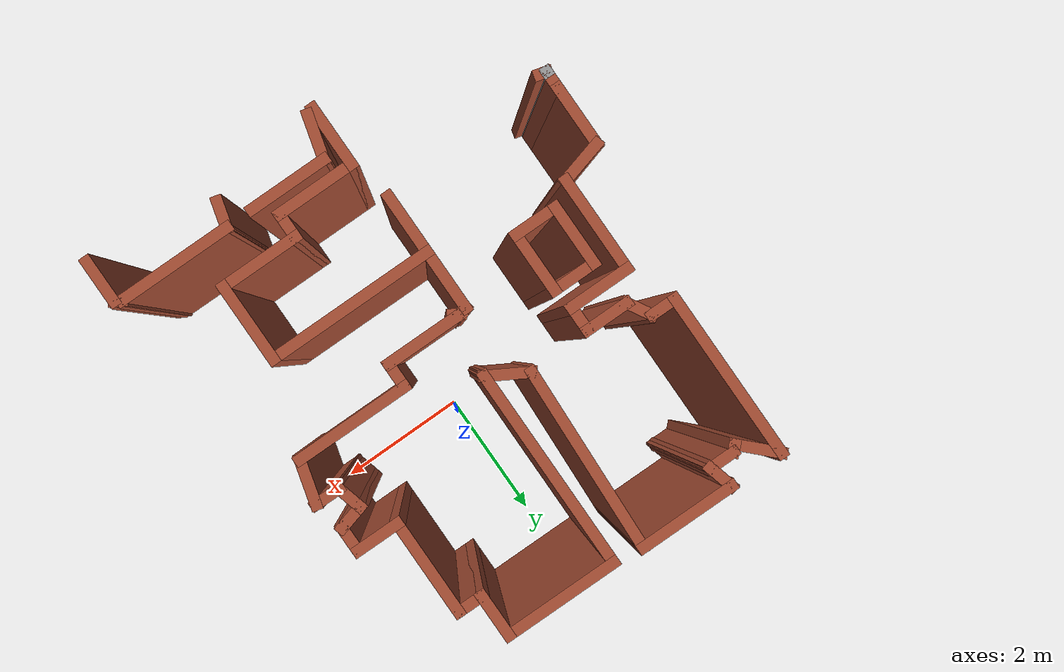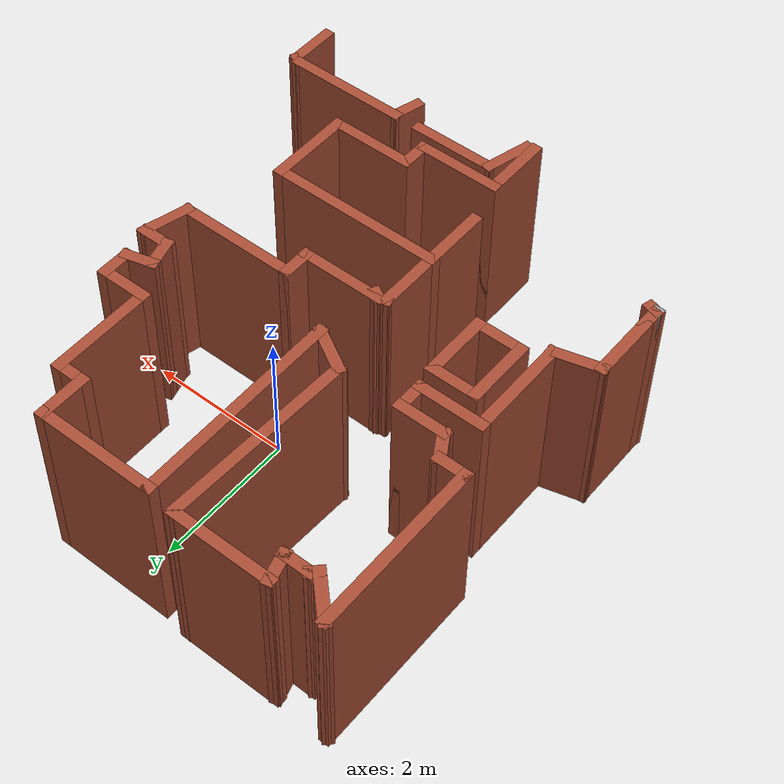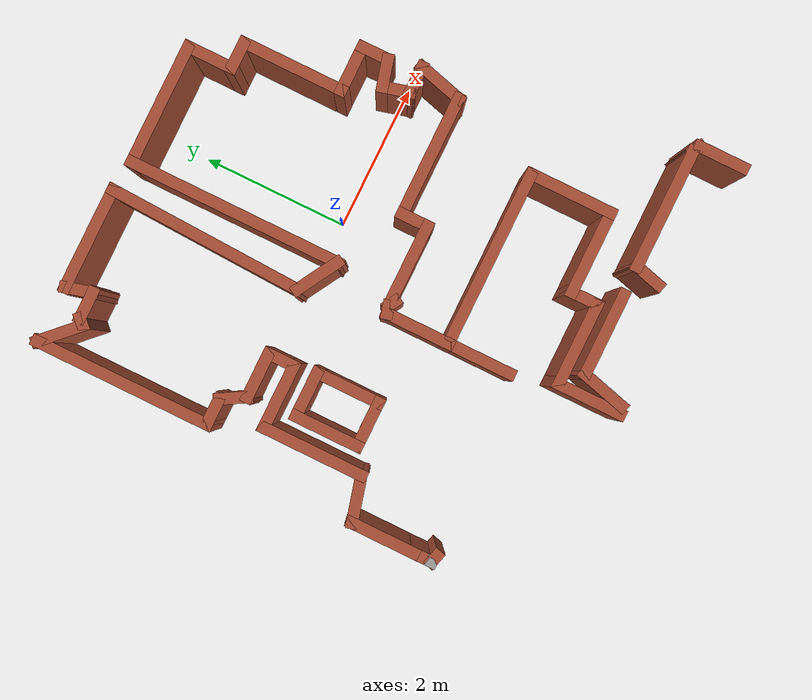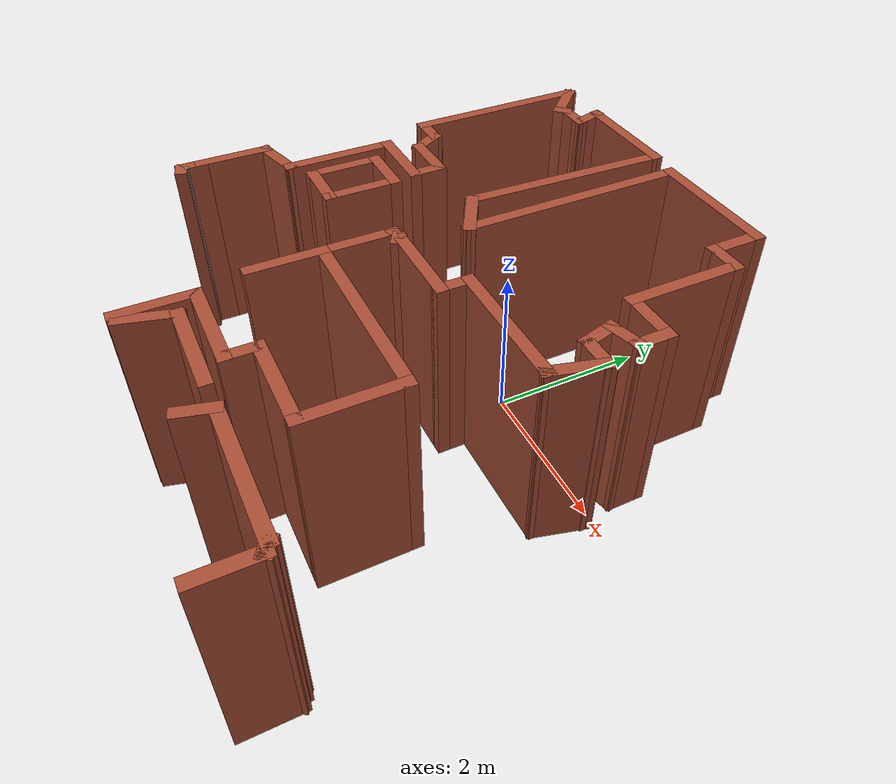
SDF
<sdf version="1.6">
 <model name="map_10">
  <pose>-0.789034 -4.23581 0 0 -0 0</pose>
  <link name="Wall_0">
   <collision name="Wall_0_Collision">
    <geometry><box><size>1.5 0.15 2.5</size></box></geometry>
    <pose>0 0 1.25 0 -0 0</pose>
   </collision>
   <visual name="Wall_0_Visual">
    <pose>0 0 1.25 0 -0 0</pose>
    <geometry><box><size>1.5 0.15 2.5</size></box></geometry>
    <material>
     <script><uri>file://media/materials/scripts/gazebo.material</uri><name>Gazebo/Bricks</name></script>
     <ambient>1 1 1 1</ambient>
    </material>
    <meta><layer>0</layer></meta>
   </visual>
   <pose>-0.842764 6.90994 0 0 -0 3.14159</pose>
  </link>
  <link name="Wall_1">
   <collision name="Wall_1_Collision">
    <geometry><box><size>0.5 0.15 2.5</size></box></geometry>
    <pose>0 0 1.25 0 -0 0</pose>
   </collision>
   <visual name="Wall_1_Visual">
    <pose>0 0 1.25 0 -0 0</pose>
    <geometry><box><size>0.5 0.15 2.5</size></box></geometry>
    <material>
     <script><uri>file://media/materials/scripts/gazebo.material</uri><name>Gazebo/Bricks</name></script>
     <ambient>1 1 1 1</ambient>
    </material>
    <meta><layer>0</layer></meta>
   </visual>
   <pose>-1.47247 6.7409 0 0 -0 -1.309</pose>
  </link>
  <link name="Wall_10">
   <collision name="Wall_10_Collision">
    <geometry><box><size>1 0.15 2.5</size></box></geometry>
    <pose>0 0 1.25 0 -0 0</pose>
   </collision>
   <visual name="Wall_10_Visual">
    <pose>0 0 1.25 0 -0 0</pose>
    <geometry><box><size>1 0.15 2.5</size></box></geometry>
    <material>
     <script><uri>file://media/materials/scripts/gazebo.material</uri><name>Gazebo/Bricks</name></script>
     <ambient>1 1 1 1</ambient>
    </material>
    <meta><layer>0</layer></meta>
   </visual>
   <pose>-1.57215 3.92231 0 0 -0 3.14159</pose>
  </link>
  <link name="Wall_100">
   <collision name="Wall_100_Collision">
    <geometry><box><size>1.25 0.15 2.5</size></box></geometry>
    <pose>0 0 1.25 0 -0 0</pose>
   </collision>
   <visual name="Wall_100_Visual">
    <pose>0 0 1.25 0 -0 0</pose>
    <geometry><box><size>1.25 0.15 2.5</size></box></geometry>
    <material>
     <script><uri>file://media/materials/scripts/gazebo.material</uri><name>Gazebo/Bricks</name></script>
     <ambient>1 1 1 1</ambient>
    </material>
    <meta><layer>0</layer></meta>
   </visual>
   <pose>2.29691 1.76891 0 0 -0 1.5708</pose>
  </link>
  <link name="Wall_103">
   <collision name="Wall_103_Collision">
    <geometry><box><size>2.5 0.15 2.5</size></box></geometry>
    <pose>0 0 1.25 0 -0 0</pose>
   </collision>
   <visual name="Wall_103_Visual">
    <pose>0 0 1.25 0 -0 0</pose>
    <geometry><box><size>2.5 0.15 2.5</size></box></geometry>
    <material>
     <script><uri>file://media/materials/scripts/gazebo.material</uri><name>Gazebo/Bricks</name></script>
     <ambient>1 1 1 1</ambient>
    </material>
    <meta><layer>0</layer></meta>
   </visual>
   <pose>1.12191 2.31891 0 0 -0 3.14159</pose>
  </link>
  <link name="Wall_104">
   <collision name="Wall_104_Collision">
    <geometry><box><size>1 0.15 2.5</size></box></geometry>
    <pose>0 0 1.25 0 -0 0</pose>
   </collision>
   <visual name="Wall_104_Visual">
    <pose>0 0 1.25 0 -0 0</pose>
    <geometry><box><size>1 0.15 2.5</size></box></geometry>
    <material>
     <script><uri>file://media/materials/scripts/gazebo.material</uri><name>Gazebo/Bricks</name></script>
     <ambient>1 1 1 1</ambient>
    </material>
    <meta><layer>0</layer></meta>
   </visual>
   <pose>-0.05309 2.74391 0 0 -0 1.5708</pose>
  </link>
  <link name="Wall_105">
   <collision name="Wall_105_Collision">
    <geometry><box><size>0.25 0.15 2.5</size></box></geometry>
    <pose>0 0 1.25 0 -0 0</pose>
   </collision>
   <visual name="Wall_105_Visual">
    <pose>0 0 1.25 0 -0 0</pose>
    <geometry><box><size>0.25 0.15 2.5</size></box></geometry>
    <material>
     <script><uri>file://media/materials/scripts/gazebo.material</uri><name>Gazebo/Bricks</name></script>
     <ambient>1 1 1 1</ambient>
    </material>
    <meta><layer>0</layer></meta>
   </visual>
   <pose>-0.004794 3.18185 0 0 -0 0.261799</pose>
  </link>
  <link name="Wall_106">
   <collision name="Wall_106_Collision">
    <geometry><box><size>0.25 0.15 2.5</size></box></geometry>
    <pose>0 0 1.25 0 -0 0</pose>
   </collision>
   <visual name="Wall_106_Visual">
    <pose>0 0 1.25 0 -0 0</pose>
    <geometry><box><size>0.25 0.15 2.5</size></box></geometry>
    <material>
     <script><uri>file://media/materials/scripts/gazebo.material</uri><name>Gazebo/Bricks</name></script>
     <ambient>1 1 1 1</ambient>
    </material>
    <meta><layer>0</layer></meta>
   </visual>
   <pose>0.086804 3.16979 0 0 -0 -0.523599</pose>
  </link>
  <link name="Wall_109">
   <collision name="Wall_109_Collision">
    <geometry><box><size>1.25 0.15 2.5</size></box></geometry>
    <pose>0 0 1.25 0 -0 0</pose>
   </collision>
   <visual name="Wall_109_Visual">
    <pose>0 0 1.25 0 -0 0</pose>
    <geometry><box><size>1.25 0.15 2.5</size></box></geometry>
    <material>
     <script><uri>file://media/materials/scripts/gazebo.material</uri><name>Gazebo/Bricks</name></script>
     <ambient>1 1 1 1</ambient>
    </material>
    <meta><layer>0</layer></meta>
   </visual>
   <pose>0.593503 3.19479 0 0 -0 0</pose>
  </link>
  <link name="Wall_11">
   <collision name="Wall_11_Collision">
    <geometry><box><size>1.5 0.15 2.5</size></box></geometry>
    <pose>0 0 1.25 0 -0 0</pose>
   </collision>
   <visual name="Wall_11_Visual">
    <pose>0 0 1.25 0 -0 0</pose>
    <geometry><box><size>1.5 0.15 2.5</size></box></geometry>
    <material>
     <script><uri>file://media/materials/scripts/gazebo.material</uri><name>Gazebo/Bricks</name></script>
     <ambient>1 1 1 1</ambient>
    </material>
    <meta><layer>0</layer></meta>
   </visual>
   <pose>-1.99715 3.24731 0 0 -0 -1.5708</pose>
  </link>
  <link name="Wall_110">
   <collision name="Wall_110_Collision">
    <geometry><box><size>0.5 0.15 2.5</size></box></geometry>
    <pose>0 0 1.25 0 -0 0</pose>
   </collision>
   <visual name="Wall_110_Visual">
    <pose>0 0 1.25 0 -0 0</pose>
    <geometry><box><size>0.5 0.15 2.5</size></box></geometry>
    <material>
     <script><uri>file://media/materials/scripts/gazebo.material</uri><name>Gazebo/Bricks</name></script>
     <ambient>1 1 1 1</ambient>
    </material>
    <meta><layer>0</layer></meta>
   </visual>
   <pose>1.1435 3.36979 0 0 -0 1.5708</pose>
  </link>
  <link name="Wall_111">
   <collision name="Wall_111_Collision">
    <geometry><box><size>1.75 0.15 2.5</size></box></geometry>
    <pose>0 0 1.25 0 -0 0</pose>
   </collision>
   <visual name="Wall_111_Visual">
    <pose>0 0 1.25 0 -0 0</pose>
    <geometry><box><size>1.75 0.15 2.5</size></box></geometry>
    <material>
     <script><uri>file://media/materials/scripts/gazebo.material</uri><name>Gazebo/Bricks</name></script>
     <ambient>1 1 1 1</ambient>
    </material>
    <meta><layer>0</layer></meta>
   </visual>
   <pose>1.9435 3.54479 0 0 -0 0</pose>
  </link>
  <link name="Wall_112">
   <collision name="Wall_112_Collision">
    <geometry><box><size>0.75 0.15 2.5</size></box></geometry>
    <pose>0 0 1.25 0 -0 0</pose>
   </collision>
   <visual name="Wall_112_Visual">
    <pose>0 0 1.25 0 -0 0</pose>
    <geometry><box><size>0.75 0.15 2.5</size></box></geometry>
    <material>
     <script><uri>file://media/materials/scripts/gazebo.material</uri><name>Gazebo/Bricks</name></script>
     <ambient>1 1 1 1</ambient>
    </material>
    <meta><layer>0</layer></meta>
   </visual>
   <pose>2.82115 3.83457 0 0 -0 1.309</pose>
  </link>
  <link name="Wall_113">
   <collision name="Wall_113_Collision">
    <geometry><box><size>0.5 0.15 2.5</size></box></geometry>
    <pose>0 0 1.25 0 -0 0</pose>
   </collision>
   <visual name="Wall_113_Visual">
    <pose>0 0 1.25 0 -0 0</pose>
    <geometry><box><size>0.5 0.15 2.5</size></box></geometry>
    <material>
     <script><uri>file://media/materials/scripts/gazebo.material</uri><name>Gazebo/Bricks</name></script>
     <ambient>1 1 1 1</ambient>
    </material>
    <meta><layer>0</layer></meta>
   </visual>
   <pose>2.72379 4.12435 0 0 -0 3.14159</pose>
  </link>
  <link name="Wall_114">
   <collision name="Wall_114_Collision">
    <geometry><box><size>0.5 0.15 2.5</size></box></geometry>
    <pose>0 0 1.25 0 -0 0</pose>
   </collision>
   <visual name="Wall_114_Visual">
    <pose>0 0 1.25 0 -0 0</pose>
    <geometry><box><size>0.5 0.15 2.5</size></box></geometry>
    <material>
     <script><uri>file://media/materials/scripts/gazebo.material</uri><name>Gazebo/Bricks</name></script>
     <ambient>1 1 1 1</ambient>
    </material>
    <meta><layer>0</layer></meta>
   </visual>
   <pose>2.5035 4.29338 0 0 -0 1.8326</pose>
  </link>
  <link name="Wall_115">
   <collision name="Wall_115_Collision">
    <geometry><box><size>0.5 0.15 2.5</size></box></geometry>
    <pose>0 0 1.25 0 -0 0</pose>
   </collision>
   <visual name="Wall_115_Visual">
    <pose>0 0 1.25 0 -0 0</pose>
    <geometry><box><size>0.5 0.15 2.5</size></box></geometry>
    <material>
     <script><uri>file://media/materials/scripts/gazebo.material</uri><name>Gazebo/Bricks</name></script>
     <ambient>1 1 1 1</ambient>
    </material>
    <meta><layer>0</layer></meta>
   </visual>
   <pose>2.62724 4.50772 0 0 -0 0.261799</pose>
  </link>
  <link name="Wall_116">
   <collision name="Wall_116_Collision">
    <geometry><box><size>0.5 0.15 2.5</size></box></geometry>
    <pose>0 0 1.25 0 -0 0</pose>
   </collision>
   <visual name="Wall_116_Visual">
    <pose>0 0 1.25 0 -0 0</pose>
    <geometry><box><size>0.5 0.15 2.5</size></box></geometry>
    <material>
     <script><uri>file://media/materials/scripts/gazebo.material</uri><name>Gazebo/Bricks</name></script>
     <ambient>1 1 1 1</ambient>
    </material>
    <meta><layer>0</layer></meta>
   </visual>
   <pose>2.79628 4.72801 0 0 -0 1.5708</pose>
  </link>
  <link name="Wall_117">
   <collision name="Wall_117_Collision">
    <geometry><box><size>0.75 0.15 2.5</size></box></geometry>
    <pose>0 0 1.25 0 -0 0</pose>
   </collision>
   <visual name="Wall_117_Visual">
    <pose>0 0 1.25 0 -0 0</pose>
    <geometry><box><size>0.75 0.15 2.5</size></box></geometry>
    <material>
     <script><uri>file://media/materials/scripts/gazebo.material</uri><name>Gazebo/Bricks</name></script>
     <ambient>1 1 1 1</ambient>
    </material>
    <meta><layer>0</layer></meta>
   </visual>
   <pose>2.49628 4.90301 0 0 -0 3.14159</pose>
  </link>
  <link name="Wall_118">
   <collision name="Wall_118_Collision">
    <geometry><box><size>1.5 0.15 2.5</size></box></geometry>
    <pose>0 0 1.25 0 -0 0</pose>
   </collision>
   <visual name="Wall_118_Visual">
    <pose>0 0 1.25 0 -0 0</pose>
    <geometry><box><size>1.5 0.15 2.5</size></box></geometry>
    <material>
     <script><uri>file://media/materials/scripts/gazebo.material</uri><name>Gazebo/Bricks</name></script>
     <ambient>1 1 1 1</ambient>
    </material>
    <meta><layer>0</layer></meta>
   </visual>
   <pose>2.19628 5.57801 0 0 -0 1.5708</pose>
  </link>
  <link name="Wall_119">
   <collision name="Wall_119_Collision">
    <geometry><box><size>0.5 0.15 2.5</size></box></geometry>
    <pose>0 0 1.25 0 -0 0</pose>
   </collision>
   <visual name="Wall_119_Visual">
    <pose>0 0 1.25 0 -0 0</pose>
    <geometry><box><size>0.5 0.15 2.5</size></box></geometry>
    <material>
     <script><uri>file://media/materials/scripts/gazebo.material</uri><name>Gazebo/Bricks</name></script>
     <ambient>1 1 1 1</ambient>
    </material>
    <meta><layer>0</layer></meta>
   </visual>
   <pose>2.02128 6.25301 0 0 -0 3.14159</pose>
  </link>
  <link name="Wall_12">
   <collision name="Wall_12_Collision">
    <geometry><box><size>0.75 0.15 2.5</size></box></geometry>
    <pose>0 0 1.25 0 -0 0</pose>
   </collision>
   <visual name="Wall_12_Visual">
    <pose>0 0 1.25 0 -0 0</pose>
    <geometry><box><size>0.75 0.15 2.5</size></box></geometry>
    <material>
     <script><uri>file://media/materials/scripts/gazebo.material</uri><name>Gazebo/Bricks</name></script>
     <ambient>1 1 1 1</ambient>
    </material>
    <meta><layer>0</layer></meta>
   </visual>
   <pose>-2.28693 2.49467 0 0 -0 -2.87979</pose>
  </link>
  <link name="Wall_120">
   <collision name="Wall_120_Collision">
    <geometry><box><size>0.75 0.15 2.5</size></box></geometry>
    <pose>0 0 1.25 0 -0 0</pose>
   </collision>
   <visual name="Wall_120_Visual">
    <pose>0 0 1.25 0 -0 0</pose>
    <geometry><box><size>0.75 0.15 2.5</size></box></geometry>
    <material>
     <script><uri>file://media/materials/scripts/gazebo.material</uri><name>Gazebo/Bricks</name></script>
     <ambient>1 1 1 1</ambient>
    </material>
    <meta><layer>0</layer></meta>
   </visual>
   <pose>1.84628 6.55301 0 0 -0 1.5708</pose>
  </link>
  <link name="Wall_121">
   <collision name="Wall_121_Collision">
    <geometry><box><size>1.75 0.15 2.5</size></box></geometry>
    <pose>0 0 1.25 0 -0 0</pose>
   </collision>
   <visual name="Wall_121_Visual">
    <pose>0 0 1.25 0 -0 0</pose>
    <geometry><box><size>1.75 0.15 2.5</size></box></geometry>
    <material>
     <script><uri>file://media/materials/scripts/gazebo.material</uri><name>Gazebo/Bricks</name></script>
     <ambient>1 1 1 1</ambient>
    </material>
    <meta><layer>0</layer></meta>
   </visual>
   <pose>1.04628 6.85301 0 0 -0 3.14159</pose>
  </link>
  <link name="Wall_122">
   <collision name="Wall_122_Collision">
    <geometry><box><size>3 0.15 2.5</size></box></geometry>
    <pose>0 0 1.25 0 -0 0</pose>
   </collision>
   <visual name="Wall_122_Visual">
    <pose>0 0 1.25 0 -0 0</pose>
    <geometry><box><size>3 0.15 2.5</size></box></geometry>
    <material>
     <script><uri>file://media/materials/scripts/gazebo.material</uri><name>Gazebo/Bricks</name></script>
     <ambient>1 1 1 1</ambient>
    </material>
    <meta><layer>0</layer></meta>
   </visual>
   <pose>0.246282 5.42801 0 0 -0 -1.5708</pose>
  </link>
  <link name="Wall_123">
   <collision name="Wall_123_Collision">
    <geometry><box><size>0.75 0.15 2.5</size></box></geometry>
    <pose>0 0 1.25 0 -0 0</pose>
   </collision>
   <visual name="Wall_123_Visual">
    <pose>0 0 1.25 0 -0 0</pose>
    <geometry><box><size>0.75 0.15 2.5</size></box></geometry>
    <material>
     <script><uri>file://media/materials/scripts/gazebo.material</uri><name>Gazebo/Bricks</name></script>
     <ambient>1 1 1 1</ambient>
    </material>
    <meta><layer>0</layer></meta>
   </visual>
   <pose>-0.013526 4.15301 0 0 -0 2.61799</pose>
  </link>
  <link name="Wall_124">
   <collision name="Wall_124_Collision">
    <geometry><box><size>2.75907 0.15 2.5</size></box></geometry>
    <pose>0 0 1.25 0 -0 0</pose>
   </collision>
   <visual name="Wall_124_Visual">
    <pose>0 0 1.25 0 -0 0</pose>
    <geometry><box><size>2.75907 0.15 2.5</size></box></geometry>
    <material>
     <script><uri>file://media/materials/scripts/gazebo.material</uri><name>Gazebo/Bricks</name></script>
     <ambient>1 1 1 1</ambient>
    </material>
    <meta><layer>0</layer></meta>
   </visual>
   <pose>-0.220549 5.60647 0 0 -0 1.53032</pose>
  </link>
  <link name="Wall_126">
   <collision name="Wall_126_Collision">
    <geometry><box><size>1 0.15 2.5</size></box></geometry>
    <pose>0 0 1.25 0 -0 0</pose>
   </collision>
   <visual name="Wall_126_Visual">
    <pose>0 0 1.25 0 -0 0</pose>
    <geometry><box><size>1 0.15 2.5</size></box></geometry>
    <material>
     <script><uri>file://media/materials/scripts/gazebo.material</uri><name>Gazebo/Bricks</name></script>
     <ambient>1 1 1 1</ambient>
    </material>
    <meta><layer>0</layer></meta>
   </visual>
   <pose>-1.69438 3.20039 0 0 -0 -1.5708</pose>
  </link>
  <link name="Wall_127">
   <collision name="Wall_127_Collision">
    <geometry><box><size>0.75 0.15 2.5</size></box></geometry>
    <pose>0 0 1.25 0 -0 0</pose>
   </collision>
   <visual name="Wall_127_Visual">
    <pose>0 0 1.25 0 -0 0</pose>
    <geometry><box><size>0.75 0.15 2.5</size></box></geometry>
    <material>
     <script><uri>file://media/materials/scripts/gazebo.material</uri><name>Gazebo/Bricks</name></script>
     <ambient>1 1 1 1</ambient>
    </material>
    <meta><layer>0</layer></meta>
   </visual>
   <pose>-1.39438 2.7754 0 0 -0 0</pose>
  </link>
  <link name="Wall_130">
   <collision name="Wall_130_Collision">
    <geometry><box><size>1 0.15 2.5</size></box></geometry>
    <pose>0 0 1.25 0 -0 0</pose>
   </collision>
   <visual name="Wall_130_Visual">
    <pose>0 0 1.25 0 -0 0</pose>
    <geometry><box><size>1 0.15 2.5</size></box></geometry>
    <material>
     <script><uri>file://media/materials/scripts/gazebo.material</uri><name>Gazebo/Bricks</name></script>
     <ambient>1 1 1 1</ambient>
    </material>
    <meta><layer>0</layer></meta>
   </visual>
   <pose>-1.09438 3.20039 0 0 -0 1.5708</pose>
  </link>
  <link name="Wall_131">
   <collision name="Wall_131_Collision">
    <geometry><box><size>0.75 0.15 2.5</size></box></geometry>
    <pose>0 0 1.25 0 -0 0</pose>
   </collision>
   <visual name="Wall_131_Visual">
    <pose>0 0 1.25 0 -0 0</pose>
    <geometry><box><size>0.75 0.15 2.5</size></box></geometry>
    <material>
     <script><uri>file://media/materials/scripts/gazebo.material</uri><name>Gazebo/Bricks</name></script>
     <ambient>1 1 1 1</ambient>
    </material>
    <meta><layer>0</layer></meta>
   </visual>
   <pose>-1.39438 3.6254 0 0 -0 3.14159</pose>
  </link>
  <link name="Wall_135">
   <collision name="Wall_135_Collision">
    <geometry><box><size>1 0.15 2.5</size></box></geometry>
    <pose>0 0 1.25 0 -0 0</pose>
   </collision>
   <visual name="Wall_135_Visual">
    <pose>0 0 1.25 0 -0 0</pose>
    <geometry><box><size>1 0.15 2.5</size></box></geometry>
    <material>
     <script><uri>file://media/materials/scripts/gazebo.material</uri><name>Gazebo/Bricks</name></script>
     <ambient>1 1 1 1</ambient>
    </material>
    <meta><layer>0</layer></meta>
   </visual>
   <pose>-0.05309 1.89391 0 0 -0 -1.5708</pose>
  </link>
  <link name="Wall_18">
   <collision name="Wall_18_Collision">
    <geometry><box><size>0.15 0.15 2.5</size></box></geometry>
    <pose>0 0 1.25 0 -0 0</pose>
   </collision>
   <visual name="Wall_18_Visual">
    <pose>0 0 1.25 0 -0 0</pose>
    <geometry><box><size>0.15 0.15 2.5</size></box></geometry>
    <material>
     <script><uri>file://media/materials/scripts/gazebo.material</uri><name>Gazebo/Grey</name></script>
     <ambient>1 1 1 1</ambient>
    </material>
    <meta><layer>0</layer></meta>
   </visual>
   <pose>-2.57671 1.31702 0 0 -0 0</pose>
  </link>
  <link name="Wall_2">
   <collision name="Wall_2_Collision">
    <geometry><box><size>0.5 0.15 2.5</size></box></geometry>
    <pose>0 0 1.25 0 -0 0</pose>
   </collision>
   <visual name="Wall_2_Visual">
    <pose>0 0 1.25 0 -0 0</pose>
    <geometry><box><size>0.5 0.15 2.5</size></box></geometry>
    <material>
     <script><uri>file://media/materials/scripts/gazebo.material</uri><name>Gazebo/Bricks</name></script>
     <ambient>1 1 1 1</ambient>
    </material>
    <meta><layer>0</layer></meta>
   </visual>
   <pose>-1.60218 6.57187 0 0 -0 3.14159</pose>
  </link>
  <link name="Wall_20">
   <collision name="Wall_20_Collision">
    <geometry><box><size>1 0.15 2.5</size></box></geometry>
    <pose>0 0 1.25 0 -0 0</pose>
   </collision>
   <visual name="Wall_20_Visual">
    <pose>0 0 1.25 0 -0 0</pose>
    <geometry><box><size>1 0.15 2.5</size></box></geometry>
    <material>
     <script><uri>file://media/materials/scripts/gazebo.material</uri><name>Gazebo/Bricks</name></script>
     <ambient>1 1 1 1</ambient>
    </material>
    <meta><layer>0</layer></meta>
   </visual>
   <pose>-2.57671 1.99202 0 0 -0 -1.5708</pose>
  </link>
  <link name="Wall_21">
   <collision name="Wall_21_Collision">
    <geometry><box><size>0.4 0.15 2.5</size></box></geometry>
    <pose>0 0 1.25 0 -0 0</pose>
   </collision>
   <visual name="Wall_21_Visual">
    <pose>0 0 1.25 0 -0 0</pose>
    <geometry><box><size>0.4 0.15 2.5</size></box></geometry>
    <material>
     <script><uri>file://media/materials/scripts/gazebo.material</uri><name>Gazebo/Bricks</name></script>
     <ambient>1 1 1 1</ambient>
    </material>
    <meta><layer>0</layer></meta>
   </visual>
   <pose>-2.57671 1.44202 0 0 -0 -1.5708</pose>
  </link>
  <link name="Wall_27">
   <collision name="Wall_27_Collision">
    <geometry><box><size>0.15 0.15 2.5</size></box></geometry>
    <pose>0 0 1.25 0 -0 0</pose>
   </collision>
   <visual name="Wall_27_Visual">
    <pose>0 0 1.25 0 -0 0</pose>
    <geometry><box><size>0.15 0.15 2.5</size></box></geometry>
    <material>
     <script><uri>file://media/materials/scripts/gazebo.material</uri><name>Gazebo/Bricks</name></script>
     <ambient>1 1 1 1</ambient>
    </material>
    <meta><layer>0</layer></meta>
   </visual>
   <pose>-2.57671 1.31702 0 0 -0 0</pose>
  </link>
  <link name="Wall_29">
   <collision name="Wall_29_Collision">
    <geometry><box><size>0.25 0.15 2.5</size></box></geometry>
    <pose>0 0 1.25 0 -0 0</pose>
   </collision>
   <visual name="Wall_29_Visual">
    <pose>0 0 1.25 0 -0 0</pose>
    <geometry><box><size>0.25 0.15 2.5</size></box></geometry>
    <material>
     <script><uri>file://media/materials/scripts/gazebo.material</uri><name>Gazebo/Bricks</name></script>
     <ambient>1 1 1 1</ambient>
    </material>
    <meta><layer>0</layer></meta>
   </visual>
   <pose>-2.52841 1.30408 0 0 -0 -0.261799</pose>
  </link>
  <link name="Wall_3">
   <collision name="Wall_3_Collision">
    <geometry><box><size>0.25 0.15 2.5</size></box></geometry>
    <pose>0 0 1.25 0 -0 0</pose>
   </collision>
   <visual name="Wall_3_Visual">
    <pose>0 0 1.25 0 -0 0</pose>
    <geometry><box><size>0.25 0.15 2.5</size></box></geometry>
    <material>
     <script><uri>file://media/materials/scripts/gazebo.material</uri><name>Gazebo/Bricks</name></script>
     <ambient>1 1 1 1</ambient>
    </material>
    <meta><layer>0</layer></meta>
   </visual>
   <pose>-1.81253 6.53651 0 0 -0 -2.35619</pose>
  </link>
  <link name="Wall_4">
   <collision name="Wall_4_Collision">
    <geometry><box><size>0.75 0.15 2.5</size></box></geometry>
    <pose>0 0 1.25 0 -0 0</pose>
   </collision>
   <visual name="Wall_4_Visual">
    <pose>0 0 1.25 0 -0 0</pose>
    <geometry><box><size>0.75 0.15 2.5</size></box></geometry>
    <material>
     <script><uri>file://media/materials/scripts/gazebo.material</uri><name>Gazebo/Bricks</name></script>
     <ambient>1 1 1 1</ambient>
    </material>
    <meta><layer>0</layer></meta>
   </visual>
   <pose>-2.06002 6.71329 0 0 -0 2.35619</pose>
  </link>
  <link name="Wall_5">
   <collision name="Wall_5_Collision">
    <geometry><box><size>2.5 0.15 2.5</size></box></geometry>
    <pose>0 0 1.25 0 -0 0</pose>
   </collision>
   <visual name="Wall_5_Visual">
    <pose>0 0 1.25 0 -0 0</pose>
    <geometry><box><size>2.5 0.15 2.5</size></box></geometry>
    <material>
     <script><uri>file://media/materials/scripts/gazebo.material</uri><name>Gazebo/Bricks</name></script>
     <ambient>1 1 1 1</ambient>
    </material>
    <meta><layer>0</layer></meta>
   </visual>
   <pose>-2.27215 5.75042 0 0 -0 -1.5708</pose>
  </link>
  <link name="Wall_6">
   <collision name="Wall_6_Collision">
    <geometry><box><size>0.5 0.15 2.5</size></box></geometry>
    <pose>0 0 1.25 0 -0 0</pose>
   </collision>
   <visual name="Wall_6_Visual">
    <pose>0 0 1.25 0 -0 0</pose>
    <geometry><box><size>0.5 0.15 2.5</size></box></geometry>
    <material>
     <script><uri>file://media/materials/scripts/gazebo.material</uri><name>Gazebo/Bricks</name></script>
     <ambient>1 1 1 1</ambient>
    </material>
    <meta><layer>0</layer></meta>
   </visual>
   <pose>-2.09715 4.57542 0 0 -0 0</pose>
  </link>
  <link name="Wall_7">
   <collision name="Wall_7_Collision">
    <geometry><box><size>0.5 0.15 2.5</size></box></geometry>
    <pose>0 0 1.25 0 -0 0</pose>
   </collision>
   <visual name="Wall_7_Visual">
    <pose>0 0 1.25 0 -0 0</pose>
    <geometry><box><size>0.5 0.15 2.5</size></box></geometry>
    <material>
     <script><uri>file://media/materials/scripts/gazebo.material</uri><name>Gazebo/Bricks</name></script>
     <ambient>1 1 1 1</ambient>
    </material>
    <meta><layer>0</layer></meta>
   </visual>
   <pose>-1.83465 4.42387 0 0 -0 -1.0472</pose>
  </link>
  <link name="Wall_8">
   <collision name="Wall_8_Collision">
    <geometry><box><size>0.75 0.15 2.5</size></box></geometry>
    <pose>0 0 1.25 0 -0 0</pose>
   </collision>
   <visual name="Wall_8_Visual">
    <pose>0 0 1.25 0 -0 0</pose>
    <geometry><box><size>0.75 0.15 2.5</size></box></geometry>
    <material>
     <script><uri>file://media/materials/scripts/gazebo.material</uri><name>Gazebo/Bricks</name></script>
     <ambient>1 1 1 1</ambient>
    </material>
    <meta><layer>0</layer></meta>
   </visual>
   <pose>-1.44715 4.27231 0 0 -0 0</pose>
  </link>
  <link name="Wall_84">
   <collision name="Wall_84_Collision">
    <geometry><box><size>0.75 0.15 2.5</size></box></geometry>
    <pose>0 0 1.25 0 -0 0</pose>
   </collision>
   <visual name="Wall_84_Visual">
    <pose>0 0 1.25 0 -0 0</pose>
    <geometry><box><size>0.75 0.15 2.5</size></box></geometry>
    <material>
     <script><uri>file://media/materials/scripts/gazebo.material</uri><name>Gazebo/Bricks</name></script>
     <ambient>1 1 1 1</ambient>
    </material>
    <meta><layer>0</layer></meta>
   </visual>
   <pose>3.52598 0.282038 0 0 -0 1.5708</pose>
  </link>
  <link name="Wall_85">
   <collision name="Wall_85_Collision">
    <geometry><box><size>0.25 0.15 2.5</size></box></geometry>
    <pose>0 0 1.25 0 -0 0</pose>
   </collision>
   <visual name="Wall_85_Visual">
    <pose>0 0 1.25 0 -0 0</pose>
    <geometry><box><size>0.25 0.15 2.5</size></box></geometry>
    <material>
     <script><uri>file://media/materials/scripts/gazebo.material</uri><name>Gazebo/Bricks</name></script>
     <ambient>1 1 1 1</ambient>
    </material>
    <meta><layer>0</layer></meta>
   </visual>
   <pose>3.48268 0.607038 0 0 -0 2.61799</pose>
  </link>
  <link name="Wall_86">
   <collision name="Wall_86_Collision">
    <geometry><box><size>1.75 0.15 2.5</size></box></geometry>
    <pose>0 0 1.25 0 -0 0</pose>
   </collision>
   <visual name="Wall_86_Visual">
    <pose>0 0 1.25 0 -0 0</pose>
    <geometry><box><size>1.75 0.15 2.5</size></box></geometry>
    <material>
     <script><uri>file://media/materials/scripts/gazebo.material</uri><name>Gazebo/Bricks</name></script>
     <ambient>1 1 1 1</ambient>
    </material>
    <meta><layer>0</layer></meta>
   </visual>
   <pose>2.63938 0.632038 0 0 -0 3.14159</pose>
  </link>
  <link name="Wall_87">
   <collision name="Wall_87_Collision">
    <geometry><box><size>0.5 0.15 2.5</size></box></geometry>
    <pose>0 0 1.25 0 -0 0</pose>
   </collision>
   <visual name="Wall_87_Visual">
    <pose>0 0 1.25 0 -0 0</pose>
    <geometry><box><size>0.5 0.15 2.5</size></box></geometry>
    <material>
     <script><uri>file://media/materials/scripts/gazebo.material</uri><name>Gazebo/Bricks</name></script>
     <ambient>1 1 1 1</ambient>
    </material>
    <meta><layer>0</layer></meta>
   </visual>
   <pose>1.79409 0.463001 0 0 -0 -1.8326</pose>
  </link>
  <link name="Wall_9">
   <collision name="Wall_9_Collision">
    <geometry><box><size>0.5 0.15 2.5</size></box></geometry>
    <pose>0 0 1.25 0 -0 0</pose>
   </collision>
   <visual name="Wall_9_Visual">
    <pose>0 0 1.25 0 -0 0</pose>
    <geometry><box><size>0.5 0.15 2.5</size></box></geometry>
    <material>
     <script><uri>file://media/materials/scripts/gazebo.material</uri><name>Gazebo/Bricks</name></script>
     <ambient>1 1 1 1</ambient>
    </material>
    <meta><layer>0</layer></meta>
   </visual>
   <pose>-1.14715 4.09731 0 0 -0 -1.5708</pose>
  </link>
  <link name="Wall_93">
   <collision name="Wall_93_Collision">
    <geometry><box><size>1.25 0.15 2.5</size></box></geometry>
    <pose>0 0 1.25 0 -0 0</pose>
   </collision>
   <visual name="Wall_93_Visual">
    <pose>0 0 1.25 0 -0 0</pose>
    <geometry><box><size>1.25 0.15 2.5</size></box></geometry>
    <material>
     <script><uri>file://media/materials/scripts/gazebo.material</uri><name>Gazebo/Bricks</name></script>
     <ambient>1 1 1 1</ambient>
    </material>
    <meta><layer>0</layer></meta>
   </visual>
   <pose>0.898794 0.624348 0 0 -0 3.14159</pose>
  </link>
  <link name="Wall_94">
   <collision name="Wall_94_Collision">
    <geometry><box><size>0.75 0.15 2.5</size></box></geometry>
    <pose>0 0 1.25 0 -0 0</pose>
   </collision>
   <visual name="Wall_94_Visual">
    <pose>0 0 1.25 0 -0 0</pose>
    <geometry><box><size>0.75 0.15 2.5</size></box></geometry>
    <material>
     <script><uri>file://media/materials/scripts/gazebo.material</uri><name>Gazebo/Bricks</name></script>
     <ambient>1 1 1 1</ambient>
    </material>
    <meta><layer>0</layer></meta>
   </visual>
   <pose>0.271149 0.334571 0 0 -0 -1.8326</pose>
  </link>
  <link name="Wall_96">
   <collision name="Wall_96_Collision">
    <geometry><box><size>1 0.15 2.5</size></box></geometry>
    <pose>0 0 1.25 0 -0 0</pose>
   </collision>
   <visual name="Wall_96_Visual">
    <pose>0 0 1.25 0 -0 0</pose>
    <geometry><box><size>1 0.15 2.5</size></box></geometry>
    <material>
     <script><uri>file://media/materials/scripts/gazebo.material</uri><name>Gazebo/Bricks</name></script>
     <ambient>1 1 1 1</ambient>
    </material>
    <meta><layer>0</layer></meta>
   </visual>
   <pose>0.09691 0.443911 0 0 -0 1.5708</pose>
  </link>
  <link name="Wall_97">
   <collision name="Wall_97_Collision">
    <geometry><box><size>1.25 0.15 2.5</size></box></geometry>
    <pose>0 0 1.25 0 -0 0</pose>
   </collision>
   <visual name="Wall_97_Visual">
    <pose>0 0 1.25 0 -0 0</pose>
    <geometry><box><size>1.25 0.15 2.5</size></box></geometry>
    <material>
     <script><uri>file://media/materials/scripts/gazebo.material</uri><name>Gazebo/Bricks</name></script>
     <ambient>1 1 1 1</ambient>
    </material>
    <meta><layer>0</layer></meta>
   </visual>
   <pose>0.64691 0.868911 0 0 -0 0</pose>
  </link>
  <link name="Wall_98">
   <collision name="Wall_98_Collision">
    <geometry><box><size>0.5 0.15 2.5</size></box></geometry>
    <pose>0 0 1.25 0 -0 0</pose>
   </collision>
   <visual name="Wall_98_Visual">
    <pose>0 0 1.25 0 -0 0</pose>
    <geometry><box><size>0.5 0.15 2.5</size></box></geometry>
    <material>
     <script><uri>file://media/materials/scripts/gazebo.material</uri><name>Gazebo/Bricks</name></script>
     <ambient>1 1 1 1</ambient>
    </material>
    <meta><layer>0</layer></meta>
   </visual>
   <pose>1.19691 1.04391 0 0 -0 1.5708</pose>
  </link>
  <link name="Wall_99">
   <collision name="Wall_99_Collision">
    <geometry><box><size>1.25 0.15 2.5</size></box></geometry>
    <pose>0 0 1.25 0 -0 0</pose>
   </collision>
   <visual name="Wall_99_Visual">
    <pose>0 0 1.25 0 -0 0</pose>
    <geometry><box><size>1.25 0.15 2.5</size></box></geometry>
    <material>
     <script><uri>file://media/materials/scripts/gazebo.material</uri><name>Gazebo/Bricks</name></script>
     <ambient>1 1 1 1</ambient>
    </material>
    <meta><layer>0</layer></meta>
   </visual>
   <pose>1.74691 1.21891 0 0 -0 0</pose>
  </link>
  <static>1</static>
 </model>
</sdf>
